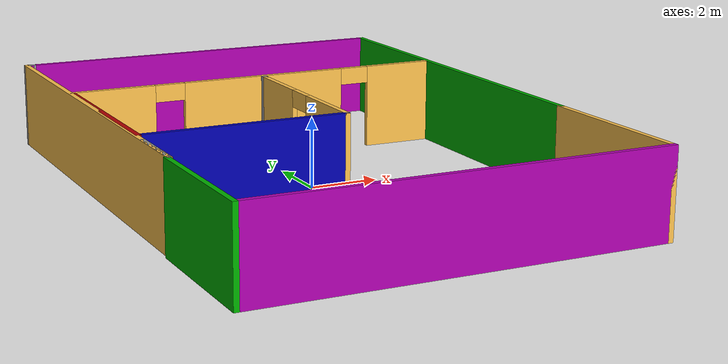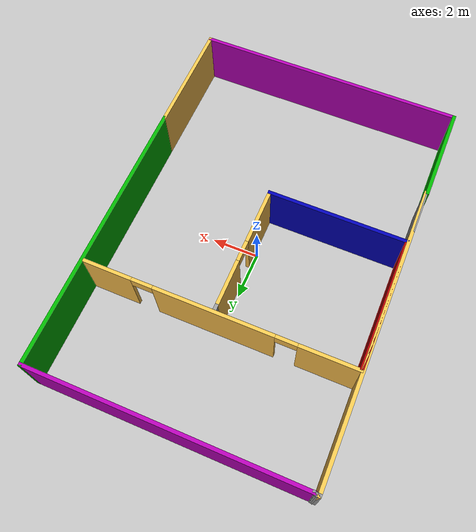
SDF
<?xml version='1.0'?>
<sdf version='1.6'>
  <model name='building4'>
    <link name='Wall_0'>
      <pose frame=''>-5.8 -6.32137 0 0 0 -1.5708</pose>
      <self_collide>0</self_collide>
      <kinematic>0</kinematic>
      <gravity>1</gravity>
      <inertial>
        <mass>1</mass>
        <pose frame=''>0 0 0 0 -0 0</pose>
        <inertia>
          <ixx>1</ixx>
          <ixy>0</ixy>
          <ixz>0</ixz>
          <iyy>1</iyy>
          <iyz>0</iyz>
          <izz>1</izz>
        </inertia>
      </inertial>
      <visual name='Wall_0_Visual'>
        <pose frame=''>0 0 1.25 0 -0 0</pose>
        <geometry>
          <box>
            <size>4.25 0.15 2.5</size>
          </box>
        </geometry>
        <material>
          <script>
            <uri>file://media/materials/scripts/gazebo.material</uri>
            <name>Gazebo/Grey</name>
          </script>
          <ambient>1 0.765 0.306 1</ambient>
          <shader type='pixel'>
            <normal_map>__default__</normal_map>
          </shader>
          <diffuse>0 0.7 0 1</diffuse>
          <specular>0.01 0.01 0.01 1</specular>
          <emissive>0 0 0 1</emissive>
        </material>
        <meta>
          <layer>0</layer>
        </meta>
        <transparency>0</transparency>
        <cast_shadows>1</cast_shadows>
      </visual>
      <collision name='Wall_0_Collision'>
        <laser_retro>0</laser_retro>
        <max_contacts>10</max_contacts>
        <pose frame=''>0 0 1.25 0 -0 0</pose>
        <geometry>
          <box>
            <size>4.25 0.15 2.5</size>
          </box>
        </geometry>
        <surface>
          <friction>
            <ode>
              <mu>1</mu>
              <mu2>1</mu2>
              <fdir1>0 0 0</fdir1>
              <slip1>0</slip1>
              <slip2>0</slip2>
            </ode>
            <torsional>
              <coefficient>1</coefficient>
              <patch_radius>0</patch_radius>
              <surface_radius>0</surface_radius>
              <use_patch_radius>1</use_patch_radius>
              <ode>
                <slip>0</slip>
              </ode>
            </torsional>
          </friction>
          <bounce>
            <restitution_coefficient>0</restitution_coefficient>
            <threshold>1e+06</threshold>
          </bounce>
          <contact>
            <collide_without_contact>0</collide_without_contact>
            <collide_without_contact_bitmask>1</collide_without_contact_bitmask>
            <collide_bitmask>1</collide_bitmask>
            <ode>
              <soft_cfm>0</soft_cfm>
              <soft_erp>0.2</soft_erp>
              <kp>1e+13</kp>
              <kd>1</kd>
              <max_vel>0.01</max_vel>
              <min_depth>0</min_depth>
            </ode>
            <bullet>
              <split_impulse>1</split_impulse>
              <split_impulse_penetration_threshold>-0.01</split_impulse_penetration_threshold>
              <soft_cfm>0</soft_cfm>
              <soft_erp>0.2</soft_erp>
              <kp>1e+13</kp>
              <kd>1</kd>
            </bullet>
          </contact>
        </surface>
      </collision>
    </link>
    <link name='Wall_1'>
      <pose frame=''>0 -8.37137 0 0 -0 0</pose>
      <self_collide>0</self_collide>
      <kinematic>0</kinematic>
      <gravity>1</gravity>
      <inertial>
        <mass>1</mass>
        <pose frame=''>0 0 0 0 -0 0</pose>
        <inertia>
          <ixx>1</ixx>
          <ixy>0</ixy>
          <ixz>0</ixz>
          <iyy>1</iyy>
          <iyz>0</iyz>
          <izz>1</izz>
        </inertia>
      </inertial>
      <visual name='Wall_1_Visual'>
        <pose frame=''>0 0 1.25 0 -0 0</pose>
        <geometry>
          <box>
            <size>11.75 0.15 2.5</size>
          </box>
        </geometry>
        <material>
          <script>
            <uri>file://media/materials/scripts/gazebo.material</uri>
            <name>Gazebo/Grey</name>
          </script>
          <ambient>1 0.765 0.306 1</ambient>
          <shader type='pixel'>
            <normal_map>__default__</normal_map>
          </shader>
          <diffuse>0.7 0 0.7 1</diffuse>
          <specular>0.01 0.01 0.01 1</specular>
          <emissive>0 0 0 1</emissive>
        </material>
        <meta>
          <layer>0</layer>
        </meta>
        <transparency>0</transparency>
        <cast_shadows>1</cast_shadows>
      </visual>
      <collision name='Wall_1_Collision'>
        <laser_retro>0</laser_retro>
        <max_contacts>10</max_contacts>
        <pose frame=''>0 0 1.25 0 -0 0</pose>
        <geometry>
          <box>
            <size>11.75 0.15 2.5</size>
          </box>
        </geometry>
        <surface>
          <friction>
            <ode>
              <mu>1</mu>
              <mu2>1</mu2>
              <fdir1>0 0 0</fdir1>
              <slip1>0</slip1>
              <slip2>0</slip2>
            </ode>
            <torsional>
              <coefficient>1</coefficient>
              <patch_radius>0</patch_radius>
              <surface_radius>0</surface_radius>
              <use_patch_radius>1</use_patch_radius>
              <ode>
                <slip>0</slip>
              </ode>
            </torsional>
          </friction>
          <bounce>
            <restitution_coefficient>0</restitution_coefficient>
            <threshold>1e+06</threshold>
          </bounce>
          <contact>
            <collide_without_contact>0</collide_without_contact>
            <collide_without_contact_bitmask>1</collide_without_contact_bitmask>
            <collide_bitmask>1</collide_bitmask>
            <ode>
              <soft_cfm>0</soft_cfm>
              <soft_erp>0.2</soft_erp>
              <kp>1e+13</kp>
              <kd>1</kd>
              <max_vel>0.01</max_vel>
              <min_depth>0</min_depth>
            </ode>
            <bullet>
              <split_impulse>1</split_impulse>
              <split_impulse_penetration_threshold>-0.01</split_impulse_penetration_threshold>
              <soft_cfm>0</soft_cfm>
              <soft_erp>0.2</soft_erp>
              <kp>1e+13</kp>
              <kd>1</kd>
            </bullet>
          </contact>
        </surface>
      </collision>
    </link>
    <link name='Wall_11'>
      <pose frame=''>-0.002798 3.79652 0 0 -0 3.14159</pose>
      <self_collide>0</self_collide>
      <kinematic>0</kinematic>
      <visual name='Wall_11_Visual_0'>
        <pose frame=''>-4.69672 0 1.25 0 -0 0</pose>
        <geometry>
          <box>
            <size>2.10657 0.15 2.5</size>
          </box>
        </geometry>
        <material>
          <script>
            <uri>file://media/materials/scripts/gazebo.material</uri>
            <name>Gazebo/Grey</name>
          </script>
          <ambient>1 0.764706 0.305882 1</ambient>
          <shader type='pixel'/>
          <diffuse>0.7 0.7 0.7 1</diffuse>
          <specular>0.01 0.01 0.01 1</specular>
          <emissive>0 0 0 1</emissive>
        </material>
        <meta>
          <layer>0</layer>
        </meta>
        <transparency>0</transparency>
        <cast_shadows>1</cast_shadows>
      </visual>
      <visual name='Wall_11_Visual_1'>
        <pose frame=''>-0.212516 0 1.25 0 -0 0</pose>
        <geometry>
          <box>
            <size>5.06183 0.15 2.5</size>
          </box>
        </geometry>
        <material>
          <script>
            <uri>file://media/materials/scripts/gazebo.material</uri>
            <name>Gazebo/Grey</name>
          </script>
          <ambient>1 0.764706 0.305882 1</ambient>
          <shader type='pixel'/>
          <diffuse>0.7 0.7 0.7 1</diffuse>
          <specular>0.01 0.01 0.01 1</specular>
          <emissive>0 0 0 1</emissive>
        </material>
        <meta>
          <layer>0</layer>
        </meta>
        <transparency>0</transparency>
        <cast_shadows>1</cast_shadows>
      </visual>
      <visual name='Wall_11_Visual_2'>
        <pose frame=''>4.4842 0 1.25 0 -0 0</pose>
        <geometry>
          <box>
            <size>2.5316 0.15 2.5</size>
          </box>
        </geometry>
        <material>
          <script>
            <uri>file://media/materials/scripts/gazebo.material</uri>
            <name>Gazebo/Grey</name>
          </script>
          <ambient>1 0.764706 0.305882 1</ambient>
          <shader type='pixel'/>
          <diffuse>0.7 0.7 0.7 1</diffuse>
          <specular>0.01 0.01 0.01 1</specular>
          <emissive>0 0 0 1</emissive>
        </material>
        <meta>
          <layer>0</layer>
        </meta>
        <transparency>0</transparency>
        <cast_shadows>1</cast_shadows>
      </visual>
      <visual name='Wall_11_Visual_3'>
        <pose frame=''>-3.19343 0 2.25 0 -0 0</pose>
        <geometry>
          <box>
            <size>0.9 0.15 0.5</size>
          </box>
        </geometry>
        <material>
          <script>
            <uri>file://media/materials/scripts/gazebo.material</uri>
            <name>Gazebo/Grey</name>
          </script>
          <ambient>1 0.764706 0.305882 1</ambient>
          <shader type='pixel'/>
          <diffuse>0.7 0.7 0.7 1</diffuse>
          <specular>0.01 0.01 0.01 1</specular>
          <emissive>0 0 0 1</emissive>
        </material>
        <meta>
          <layer>0</layer>
        </meta>
        <transparency>0</transparency>
        <cast_shadows>1</cast_shadows>
      </visual>
      <visual name='Wall_11_Visual_4'>
        <pose frame=''>2.7684 0 2.25 0 -0 0</pose>
        <geometry>
          <box>
            <size>0.9 0.15 0.5</size>
          </box>
        </geometry>
        <material>
          <script>
            <uri>file://media/materials/scripts/gazebo.material</uri>
            <name>Gazebo/Grey</name>
          </script>
          <ambient>1 0.764706 0.305882 1</ambient>
          <shader type='pixel'/>
          <diffuse>0.7 0.7 0.7 1</diffuse>
          <specular>0.01 0.01 0.01 1</specular>
          <emissive>0 0 0 1</emissive>
        </material>
        <meta>
          <layer>0</layer>
        </meta>
        <transparency>0</transparency>
        <cast_shadows>1</cast_shadows>
      </visual>
      <collision name='Wall_11_Collision_0'>
        <laser_retro>0</laser_retro>
        <max_contacts>10</max_contacts>
        <pose frame=''>-4.69672 0 1.25 0 -0 0</pose>
        <geometry>
          <box>
            <size>2.10657 0.15 2.5</size>
          </box>
        </geometry>
        <surface>
          <friction>
            <ode>
              <mu>1</mu>
              <mu2>1</mu2>
              <fdir1>0 0 0</fdir1>
              <slip1>0</slip1>
              <slip2>0</slip2>
            </ode>
            <torsional>
              <coefficient>1</coefficient>
              <patch_radius>0</patch_radius>
              <surface_radius>0</surface_radius>
              <use_patch_radius>1</use_patch_radius>
              <ode>
                <slip>0</slip>
              </ode>
            </torsional>
          </friction>
          <bounce>
            <restitution_coefficient>0</restitution_coefficient>
            <threshold>1e+06</threshold>
          </bounce>
          <contact>
            <collide_without_contact>0</collide_without_contact>
            <collide_without_contact_bitmask>1</collide_without_contact_bitmask>
            <collide_bitmask>1</collide_bitmask>
            <ode>
              <soft_cfm>0</soft_cfm>
              <soft_erp>0.2</soft_erp>
              <kp>1e+13</kp>
              <kd>1</kd>
              <max_vel>0.01</max_vel>
              <min_depth>0</min_depth>
            </ode>
            <bullet>
              <split_impulse>1</split_impulse>
              <split_impulse_penetration_threshold>-0.01</split_impulse_penetration_threshold>
              <soft_cfm>0</soft_cfm>
              <soft_erp>0.2</soft_erp>
              <kp>1e+13</kp>
              <kd>1</kd>
            </bullet>
          </contact>
        </surface>
      </collision>
      <collision name='Wall_11_Collision_3'>
        <laser_retro>0</laser_retro>
        <max_contacts>10</max_contacts>
        <pose frame=''>-3.19343 0 2.25 0 -0 0</pose>
        <geometry>
          <box>
            <size>0.9 0.15 0.5</size>
          </box>
        </geometry>
        <surface>
          <friction>
            <ode>
              <mu>1</mu>
              <mu2>1</mu2>
              <fdir1>0 0 0</fdir1>
              <slip1>0</slip1>
              <slip2>0</slip2>
            </ode>
            <torsional>
              <coefficient>1</coefficient>
              <patch_radius>0</patch_radius>
              <surface_radius>0</surface_radius>
              <use_patch_radius>1</use_patch_radius>
              <ode>
                <slip>0</slip>
              </ode>
            </torsional>
          </friction>
          <bounce>
            <restitution_coefficient>0</restitution_coefficient>
            <threshold>1e+06</threshold>
          </bounce>
          <contact>
            <collide_without_contact>0</collide_without_contact>
            <collide_without_contact_bitmask>1</collide_without_contact_bitmask>
            <collide_bitmask>1</collide_bitmask>
            <ode>
              <soft_cfm>0</soft_cfm>
              <soft_erp>0.2</soft_erp>
              <kp>1e+13</kp>
              <kd>1</kd>
              <max_vel>0.01</max_vel>
              <min_depth>0</min_depth>
            </ode>
            <bullet>
              <split_impulse>1</split_impulse>
              <split_impulse_penetration_threshold>-0.01</split_impulse_penetration_threshold>
              <soft_cfm>0</soft_cfm>
              <soft_erp>0.2</soft_erp>
              <kp>1e+13</kp>
              <kd>1</kd>
            </bullet>
          </contact>
        </surface>
      </collision>
      <collision name='Wall_11_Collision_1'>
        <laser_retro>0</laser_retro>
        <max_contacts>10</max_contacts>
        <pose frame=''>-0.212516 0 1.25 0 -0 0</pose>
        <geometry>
          <box>
            <size>5.06183 0.15 2.5</size>
          </box>
        </geometry>
        <surface>
          <friction>
            <ode>
              <mu>1</mu>
              <mu2>1</mu2>
              <fdir1>0 0 0</fdir1>
              <slip1>0</slip1>
              <slip2>0</slip2>
            </ode>
            <torsional>
              <coefficient>1</coefficient>
              <patch_radius>0</patch_radius>
              <surface_radius>0</surface_radius>
              <use_patch_radius>1</use_patch_radius>
              <ode>
                <slip>0</slip>
              </ode>
            </torsional>
          </friction>
          <bounce>
            <restitution_coefficient>0</restitution_coefficient>
            <threshold>1e+06</threshold>
          </bounce>
          <contact>
            <collide_without_contact>0</collide_without_contact>
            <collide_without_contact_bitmask>1</collide_without_contact_bitmask>
            <collide_bitmask>1</collide_bitmask>
            <ode>
              <soft_cfm>0</soft_cfm>
              <soft_erp>0.2</soft_erp>
              <kp>1e+13</kp>
              <kd>1</kd>
              <max_vel>0.01</max_vel>
              <min_depth>0</min_depth>
            </ode>
            <bullet>
              <split_impulse>1</split_impulse>
              <split_impulse_penetration_threshold>-0.01</split_impulse_penetration_threshold>
              <soft_cfm>0</soft_cfm>
              <soft_erp>0.2</soft_erp>
              <kp>1e+13</kp>
              <kd>1</kd>
            </bullet>
          </contact>
        </surface>
      </collision>
      <collision name='Wall_11_Collision_2'>
        <laser_retro>0</laser_retro>
        <max_contacts>10</max_contacts>
        <pose frame=''>4.4842 0 1.25 0 -0 0</pose>
        <geometry>
          <box>
            <size>2.5316 0.15 2.5</size>
          </box>
        </geometry>
        <surface>
          <friction>
            <ode>
              <mu>1</mu>
              <mu2>1</mu2>
              <fdir1>0 0 0</fdir1>
              <slip1>0</slip1>
              <slip2>0</slip2>
            </ode>
            <torsional>
              <coefficient>1</coefficient>
              <patch_radius>0</patch_radius>
              <surface_radius>0</surface_radius>
              <use_patch_radius>1</use_patch_radius>
              <ode>
                <slip>0</slip>
              </ode>
            </torsional>
          </friction>
          <bounce>
            <restitution_coefficient>0</restitution_coefficient>
            <threshold>1e+06</threshold>
          </bounce>
          <contact>
            <collide_without_contact>0</collide_without_contact>
            <collide_without_contact_bitmask>1</collide_without_contact_bitmask>
            <collide_bitmask>1</collide_bitmask>
            <ode>
              <soft_cfm>0</soft_cfm>
              <soft_erp>0.2</soft_erp>
              <kp>1e+13</kp>
              <kd>1</kd>
              <max_vel>0.01</max_vel>
              <min_depth>0</min_depth>
            </ode>
            <bullet>
              <split_impulse>1</split_impulse>
              <split_impulse_penetration_threshold>-0.01</split_impulse_penetration_threshold>
              <soft_cfm>0</soft_cfm>
              <soft_erp>0.2</soft_erp>
              <kp>1e+13</kp>
              <kd>1</kd>
            </bullet>
          </contact>
        </surface>
      </collision>
      <collision name='Wall_11_Collision_4'>
        <laser_retro>0</laser_retro>
        <max_contacts>10</max_contacts>
        <pose frame=''>2.7684 0 2.25 0 -0 0</pose>
        <geometry>
          <box>
            <size>0.9 0.15 0.5</size>
          </box>
        </geometry>
        <surface>
          <friction>
            <ode>
              <mu>1</mu>
              <mu2>1</mu2>
              <fdir1>0 0 0</fdir1>
              <slip1>0</slip1>
              <slip2>0</slip2>
            </ode>
            <torsional>
              <coefficient>1</coefficient>
              <patch_radius>0</patch_radius>
              <surface_radius>0</surface_radius>
              <use_patch_radius>1</use_patch_radius>
              <ode>
                <slip>0</slip>
              </ode>
            </torsional>
          </friction>
          <bounce>
            <restitution_coefficient>0</restitution_coefficient>
            <threshold>1e+06</threshold>
          </bounce>
          <contact>
            <collide_without_contact>0</collide_without_contact>
            <collide_without_contact_bitmask>1</collide_without_contact_bitmask>
            <collide_bitmask>1</collide_bitmask>
            <ode>
              <soft_cfm>0</soft_cfm>
              <soft_erp>0.2</soft_erp>
              <kp>1e+13</kp>
              <kd>1</kd>
              <max_vel>0.01</max_vel>
              <min_depth>0</min_depth>
            </ode>
            <bullet>
              <split_impulse>1</split_impulse>
              <split_impulse_penetration_threshold>-0.01</split_impulse_penetration_threshold>
              <soft_cfm>0</soft_cfm>
              <soft_erp>0.2</soft_erp>
              <kp>1e+13</kp>
              <kd>1</kd>
            </bullet>
          </contact>
        </surface>
      </collision>
    </link>
    <link name='Wall_12'>
      <pose frame=''>-5.6778 0.996518 0 0 0 -1.5708</pose>
      <self_collide>0</self_collide>
      <kinematic>0</kinematic>
      <gravity>1</gravity>
      <inertial>
        <mass>1</mass>
        <pose frame=''>0 0 0 0 -0 0</pose>
        <inertia>
          <ixx>1</ixx>
          <ixy>0</ixy>
          <ixz>0</ixz>
          <iyy>1</iyy>
          <iyz>0</iyz>
          <izz>1</izz>
        </inertia>
      </inertial>
      <visual name='Wall_12_Visual'>
        <pose frame=''>0 0 1.25 0 -0 0</pose>
        <geometry>
          <box>
            <size>5.75 0.15 2.5</size>
          </box>
        </geometry>
        <material>
          <script>
            <uri>file://media/materials/scripts/gazebo.material</uri>
            <name>Gazebo/Grey</name>
          </script>
          <ambient>1 0.765 0.306 1</ambient>
          <shader type='pixel'>
            <normal_map>__default__</normal_map>
          </shader>
          <diffuse>0.7 0 0 1</diffuse>
          <specular>0.01 0.01 0.01 1</specular>
          <emissive>0 0 0 1</emissive>
        </material>
        <meta>
          <layer>0</layer>
        </meta>
        <transparency>0</transparency>
        <cast_shadows>1</cast_shadows>
      </visual>
      <collision name='Wall_12_Collision'>
        <laser_retro>0</laser_retro>
        <max_contacts>10</max_contacts>
        <pose frame=''>0 0 1.25 0 -0 0</pose>
        <geometry>
          <box>
            <size>5.75 0.15 2.5</size>
          </box>
        </geometry>
        <surface>
          <friction>
            <ode>
              <mu>1</mu>
              <mu2>1</mu2>
              <fdir1>0 0 0</fdir1>
              <slip1>0</slip1>
              <slip2>0</slip2>
            </ode>
            <torsional>
              <coefficient>1</coefficient>
              <patch_radius>0</patch_radius>
              <surface_radius>0</surface_radius>
              <use_patch_radius>1</use_patch_radius>
              <ode>
                <slip>0</slip>
              </ode>
            </torsional>
          </friction>
          <bounce>
            <restitution_coefficient>0</restitution_coefficient>
            <threshold>1e+06</threshold>
          </bounce>
          <contact>
            <collide_without_contact>0</collide_without_contact>
            <collide_without_contact_bitmask>1</collide_without_contact_bitmask>
            <collide_bitmask>1</collide_bitmask>
            <ode>
              <soft_cfm>0</soft_cfm>
              <soft_erp>0.2</soft_erp>
              <kp>1e+13</kp>
              <kd>1</kd>
              <max_vel>0.01</max_vel>
              <min_depth>0</min_depth>
            </ode>
            <bullet>
              <split_impulse>1</split_impulse>
              <split_impulse_penetration_threshold>-0.01</split_impulse_penetration_threshold>
              <soft_cfm>0</soft_cfm>
              <soft_erp>0.2</soft_erp>
              <kp>1e+13</kp>
              <kd>1</kd>
            </bullet>
          </contact>
        </surface>
      </collision>
    </link>
    <link name='Wall_13'>
      <pose frame=''>-2.7528 -1.80348 0 0 -0 0</pose>
      <self_collide>0</self_collide>
      <kinematic>0</kinematic>
      <gravity>1</gravity>
      <inertial>
        <mass>1</mass>
        <pose frame=''>0 0 0 0 -0 0</pose>
        <inertia>
          <ixx>1</ixx>
          <ixy>0</ixy>
          <ixz>0</ixz>
          <iyy>1</iyy>
          <iyz>0</iyz>
          <izz>1</izz>
        </inertia>
      </inertial>
      <visual name='Wall_13_Visual'>
        <pose frame=''>0 0 1.25 0 -0 0</pose>
        <geometry>
          <box>
            <size>6 0.15 2.5</size>
          </box>
        </geometry>
        <material>
          <script>
            <uri>file://media/materials/scripts/gazebo.material</uri>
            <name>Gazebo/Grey</name>
          </script>
          <ambient>1 0.765 0.306 1</ambient>
          <shader type='pixel'>
            <normal_map>__default__</normal_map>
          </shader>
          <diffuse>0 0 0.7 1</diffuse>
          <specular>0.01 0.01 0.01 1</specular>
          <emissive>0 0 0 1</emissive>
        </material>
        <meta>
          <layer>0</layer>
        </meta>
        <transparency>0</transparency>
        <cast_shadows>1</cast_shadows>
      </visual>
      <collision name='Wall_13_Collision'>
        <laser_retro>0</laser_retro>
        <max_contacts>10</max_contacts>
        <pose frame=''>0 0 1.25 0 -0 0</pose>
        <geometry>
          <box>
            <size>6 0.15 2.5</size>
          </box>
        </geometry>
        <surface>
          <friction>
            <ode>
              <mu>1</mu>
              <mu2>1</mu2>
              <fdir1>0 0 0</fdir1>
              <slip1>0</slip1>
              <slip2>0</slip2>
            </ode>
            <torsional>
              <coefficient>1</coefficient>
              <patch_radius>0</patch_radius>
              <surface_radius>0</surface_radius>
              <use_patch_radius>1</use_patch_radius>
              <ode>
                <slip>0</slip>
              </ode>
            </torsional>
          </friction>
          <bounce>
            <restitution_coefficient>0</restitution_coefficient>
            <threshold>1e+06</threshold>
          </bounce>
          <contact>
            <collide_without_contact>0</collide_without_contact>
            <collide_without_contact_bitmask>1</collide_without_contact_bitmask>
            <collide_bitmask>1</collide_bitmask>
            <ode>
              <soft_cfm>0</soft_cfm>
              <soft_erp>0.2</soft_erp>
              <kp>1e+13</kp>
              <kd>1</kd>
              <max_vel>0.01</max_vel>
              <min_depth>0</min_depth>
            </ode>
            <bullet>
              <split_impulse>1</split_impulse>
              <split_impulse_penetration_threshold>-0.01</split_impulse_penetration_threshold>
              <soft_cfm>0</soft_cfm>
              <soft_erp>0.2</soft_erp>
              <kp>1e+13</kp>
              <kd>1</kd>
            </bullet>
          </contact>
        </surface>
      </collision>
    </link>
    <link name='Wall_14'>
      <pose frame=''>0.172202 0.871518 0 0 -0 1.5708</pose>
      <self_collide>0</self_collide>
      <kinematic>0</kinematic>
      <visual name='Wall_14_Visual_0'>
        <pose frame=''>-1.50462 0 1.25 0 -0 0</pose>
        <geometry>
          <box>
            <size>2.49076 0.15 2.5</size>
          </box>
        </geometry>
        <material>
          <script>
            <uri>file://media/materials/scripts/gazebo.material</uri>
            <name>Gazebo/Grey</name>
          </script>
          <ambient>1 0.764706 0.305882 1</ambient>
          <shader type='pixel'/>
          <diffuse>0.7 0.7 0.7 1</diffuse>
          <specular>0.01 0.01 0.01 1</specular>
          <emissive>0 0 0 1</emissive>
        </material>
        <meta>
          <layer>0</layer>
        </meta>
        <transparency>0</transparency>
        <cast_shadows>1</cast_shadows>
      </visual>
      <visual name='Wall_14_Visual_1'>
        <pose frame=''>1.69538 0 1.25 0 -0 0</pose>
        <geometry>
          <box>
            <size>2.10924 0.15 2.5</size>
          </box>
        </geometry>
        <material>
          <script>
            <uri>file://media/materials/scripts/gazebo.material</uri>
            <name>Gazebo/Grey</name>
          </script>
          <ambient>1 0.764706 0.305882 1</ambient>
          <shader type='pixel'/>
          <diffuse>0.7 0.7 0.7 1</diffuse>
          <specular>0.01 0.01 0.01 1</specular>
          <emissive>0 0 0 1</emissive>
        </material>
        <meta>
          <layer>0</layer>
        </meta>
        <transparency>0</transparency>
        <cast_shadows>1</cast_shadows>
      </visual>
      <visual name='Wall_14_Visual_2'>
        <pose frame=''>0.190763 0 2.25 0 -0 0</pose>
        <geometry>
          <box>
            <size>0.9 0.15 0.5</size>
          </box>
        </geometry>
        <material>
          <script>
            <uri>file://media/materials/scripts/gazebo.material</uri>
            <name>Gazebo/Grey</name>
          </script>
          <ambient>1 0.764706 0.305882 1</ambient>
          <shader type='pixel'/>
          <diffuse>0.7 0.7 0.7 1</diffuse>
          <specular>0.01 0.01 0.01 1</specular>
          <emissive>0 0 0 1</emissive>
        </material>
        <meta>
          <layer>0</layer>
        </meta>
        <transparency>0</transparency>
        <cast_shadows>1</cast_shadows>
      </visual>
      <collision name='Wall_14_Collision_0'>
        <laser_retro>0</laser_retro>
        <max_contacts>10</max_contacts>
        <pose frame=''>-1.50462 0 1.25 0 -0 0</pose>
        <geometry>
          <box>
            <size>2.49076 0.15 2.5</size>
          </box>
        </geometry>
        <surface>
          <friction>
            <ode>
              <mu>1</mu>
              <mu2>1</mu2>
              <fdir1>0 0 0</fdir1>
              <slip1>0</slip1>
              <slip2>0</slip2>
            </ode>
            <torsional>
              <coefficient>1</coefficient>
              <patch_radius>0</patch_radius>
              <surface_radius>0</surface_radius>
              <use_patch_radius>1</use_patch_radius>
              <ode>
                <slip>0</slip>
              </ode>
            </torsional>
          </friction>
          <bounce>
            <restitution_coefficient>0</restitution_coefficient>
            <threshold>1e+06</threshold>
          </bounce>
          <contact>
            <collide_without_contact>0</collide_without_contact>
            <collide_without_contact_bitmask>1</collide_without_contact_bitmask>
            <collide_bitmask>1</collide_bitmask>
            <ode>
              <soft_cfm>0</soft_cfm>
              <soft_erp>0.2</soft_erp>
              <kp>1e+13</kp>
              <kd>1</kd>
              <max_vel>0.01</max_vel>
              <min_depth>0</min_depth>
            </ode>
            <bullet>
              <split_impulse>1</split_impulse>
              <split_impulse_penetration_threshold>-0.01</split_impulse_penetration_threshold>
              <soft_cfm>0</soft_cfm>
              <soft_erp>0.2</soft_erp>
              <kp>1e+13</kp>
              <kd>1</kd>
            </bullet>
          </contact>
        </surface>
      </collision>
      <collision name='Wall_14_Collision_1'>
        <laser_retro>0</laser_retro>
        <max_contacts>10</max_contacts>
        <pose frame=''>1.69538 0 1.25 0 -0 0</pose>
        <geometry>
          <box>
            <size>2.10924 0.15 2.5</size>
          </box>
        </geometry>
        <surface>
          <friction>
            <ode>
              <mu>1</mu>
              <mu2>1</mu2>
              <fdir1>0 0 0</fdir1>
              <slip1>0</slip1>
              <slip2>0</slip2>
            </ode>
            <torsional>
              <coefficient>1</coefficient>
              <patch_radius>0</patch_radius>
              <surface_radius>0</surface_radius>
              <use_patch_radius>1</use_patch_radius>
              <ode>
                <slip>0</slip>
              </ode>
            </torsional>
          </friction>
          <bounce>
            <restitution_coefficient>0</restitution_coefficient>
            <threshold>1e+06</threshold>
          </bounce>
          <contact>
            <collide_without_contact>0</collide_without_contact>
            <collide_without_contact_bitmask>1</collide_without_contact_bitmask>
            <collide_bitmask>1</collide_bitmask>
            <ode>
              <soft_cfm>0</soft_cfm>
              <soft_erp>0.2</soft_erp>
              <kp>1e+13</kp>
              <kd>1</kd>
              <max_vel>0.01</max_vel>
              <min_depth>0</min_depth>
            </ode>
            <bullet>
              <split_impulse>1</split_impulse>
              <split_impulse_penetration_threshold>-0.01</split_impulse_penetration_threshold>
              <soft_cfm>0</soft_cfm>
              <soft_erp>0.2</soft_erp>
              <kp>1e+13</kp>
              <kd>1</kd>
            </bullet>
          </contact>
        </surface>
      </collision>
      <collision name='Wall_14_Collision_2'>
        <laser_retro>0</laser_retro>
        <max_contacts>10</max_contacts>
        <pose frame=''>0.190763 0 2.25 0 -0 0</pose>
        <geometry>
          <box>
            <size>0.9 0.15 0.5</size>
          </box>
        </geometry>
        <surface>
          <friction>
            <ode>
              <mu>1</mu>
              <mu2>1</mu2>
              <fdir1>0 0 0</fdir1>
              <slip1>0</slip1>
              <slip2>0</slip2>
            </ode>
            <torsional>
              <coefficient>1</coefficient>
              <patch_radius>0</patch_radius>
              <surface_radius>0</surface_radius>
              <use_patch_radius>1</use_patch_radius>
              <ode>
                <slip>0</slip>
              </ode>
            </torsional>
          </friction>
          <bounce>
            <restitution_coefficient>0</restitution_coefficient>
            <threshold>1e+06</threshold>
          </bounce>
          <contact>
            <collide_without_contact>0</collide_without_contact>
            <collide_without_contact_bitmask>1</collide_without_contact_bitmask>
            <collide_bitmask>1</collide_bitmask>
            <ode>
              <soft_cfm>0</soft_cfm>
              <soft_erp>0.2</soft_erp>
              <kp>1e+13</kp>
              <kd>1</kd>
              <max_vel>0.01</max_vel>
              <min_depth>0</min_depth>
            </ode>
            <bullet>
              <split_impulse>1</split_impulse>
              <split_impulse_penetration_threshold>-0.01</split_impulse_penetration_threshold>
              <soft_cfm>0</soft_cfm>
              <soft_erp>0.2</soft_erp>
              <kp>1e+13</kp>
              <kd>1</kd>
            </bullet>
          </contact>
        </surface>
      </collision>
    </link>
    <link name='Wall_15'>
      <pose frame=''>0.172101 3.59658 0 0 -0 1.57281</pose>
      <self_collide>0</self_collide>
      <kinematic>0</kinematic>
      <visual name='Wall_15_Visual'>
        <pose frame=''>0 0 1.25 0 -0 0</pose>
        <geometry>
          <box>
            <size>0.25 0.15 2.5</size>
          </box>
        </geometry>
        <material>
          <script>
            <uri>file://media/materials/scripts/gazebo.material</uri>
            <name>Gazebo/Grey</name>
          </script>
          <ambient>1 1 1 1</ambient>
          <shader type='pixel'/>
          <diffuse>0.7 0.7 0.7 1</diffuse>
          <specular>0.01 0.01 0.01 1</specular>
          <emissive>0 0 0 1</emissive>
        </material>
        <meta>
          <layer>0</layer>
        </meta>
        <transparency>0</transparency>
        <cast_shadows>1</cast_shadows>
      </visual>
      <collision name='Wall_15_Collision'>
        <laser_retro>0</laser_retro>
        <max_contacts>10</max_contacts>
        <pose frame=''>0 0 1.25 0 -0 0</pose>
        <geometry>
          <box>
            <size>0.25 0.15 2.5</size>
          </box>
        </geometry>
        <surface>
          <friction>
            <ode>
              <mu>1</mu>
              <mu2>1</mu2>
              <fdir1>0 0 0</fdir1>
              <slip1>0</slip1>
              <slip2>0</slip2>
            </ode>
            <torsional>
              <coefficient>1</coefficient>
              <patch_radius>0</patch_radius>
              <surface_radius>0</surface_radius>
              <use_patch_radius>1</use_patch_radius>
              <ode>
                <slip>0</slip>
              </ode>
            </torsional>
          </friction>
          <bounce>
            <restitution_coefficient>0</restitution_coefficient>
            <threshold>1e+06</threshold>
          </bounce>
          <contact>
            <collide_without_contact>0</collide_without_contact>
            <collide_without_contact_bitmask>1</collide_without_contact_bitmask>
            <collide_bitmask>1</collide_bitmask>
            <ode>
              <soft_cfm>0</soft_cfm>
              <soft_erp>0.2</soft_erp>
              <kp>1e+13</kp>
              <kd>1</kd>
              <max_vel>0.01</max_vel>
              <min_depth>0</min_depth>
            </ode>
            <bullet>
              <split_impulse>1</split_impulse>
              <split_impulse_penetration_threshold>-0.01</split_impulse_penetration_threshold>
              <soft_cfm>0</soft_cfm>
              <soft_erp>0.2</soft_erp>
              <kp>1e+13</kp>
              <kd>1</kd>
            </bullet>
          </contact>
        </surface>
      </collision>
    </link>
    <link name='Wall_2'>
      <pose frame=''>5.8 -5.94637 0 0 -0 1.5708</pose>
      <self_collide>0</self_collide>
      <kinematic>0</kinematic>
      <visual name='Wall_2_Visual'>
        <pose frame=''>0 0 1.25 0 -0 0</pose>
        <geometry>
          <box>
            <size>5 0.15 2.5</size>
          </box>
        </geometry>
        <material>
          <script>
            <uri>file://media/materials/scripts/gazebo.material</uri>
            <name>Gazebo/Grey</name>
          </script>
          <ambient>1 0.764706 0.305882 1</ambient>
          <shader type='pixel'/>
          <diffuse>0.7 0.7 0.7 1</diffuse>
          <specular>0.01 0.01 0.01 1</specular>
          <emissive>0 0 0 1</emissive>
        </material>
        <meta>
          <layer>0</layer>
        </meta>
        <transparency>0</transparency>
        <cast_shadows>1</cast_shadows>
      </visual>
      <collision name='Wall_2_Collision'>
        <laser_retro>0</laser_retro>
        <max_contacts>10</max_contacts>
        <pose frame=''>0 0 1.25 0 -0 0</pose>
        <geometry>
          <box>
            <size>5 0.15 2.5</size>
          </box>
        </geometry>
        <surface>
          <friction>
            <ode>
              <mu>1</mu>
              <mu2>1</mu2>
              <fdir1>0 0 0</fdir1>
              <slip1>0</slip1>
              <slip2>0</slip2>
            </ode>
            <torsional>
              <coefficient>1</coefficient>
              <patch_radius>0</patch_radius>
              <surface_radius>0</surface_radius>
              <use_patch_radius>1</use_patch_radius>
              <ode>
                <slip>0</slip>
              </ode>
            </torsional>
          </friction>
          <bounce>
            <restitution_coefficient>0</restitution_coefficient>
            <threshold>1e+06</threshold>
          </bounce>
          <contact>
            <collide_without_contact>0</collide_without_contact>
            <collide_without_contact_bitmask>1</collide_without_contact_bitmask>
            <collide_bitmask>1</collide_bitmask>
            <ode>
              <soft_cfm>0</soft_cfm>
              <soft_erp>0.2</soft_erp>
              <kp>1e+13</kp>
              <kd>1</kd>
              <max_vel>0.01</max_vel>
              <min_depth>0</min_depth>
            </ode>
            <bullet>
              <split_impulse>1</split_impulse>
              <split_impulse_penetration_threshold>-0.01</split_impulse_penetration_threshold>
              <soft_cfm>0</soft_cfm>
              <soft_erp>0.2</soft_erp>
              <kp>1e+13</kp>
              <kd>1</kd>
            </bullet>
          </contact>
        </surface>
      </collision>
    </link>
    <link name='Wall_3'>
      <pose frame=''>5.8 2.40363 0 0 -0 1.5708</pose>
      <self_collide>0</self_collide>
      <kinematic>0</kinematic>
      <gravity>1</gravity>
      <inertial>
        <mass>1</mass>
        <pose frame=''>0 0 0 0 -0 0</pose>
        <inertia>
          <ixx>1</ixx>
          <ixy>0</ixy>
          <ixz>0</ixz>
          <iyy>1</iyy>
          <iyz>0</iyz>
          <izz>1</izz>
        </inertia>
      </inertial>
      <visual name='Wall_3_Visual'>
        <pose frame=''>0 0 1.25 0 -0 0</pose>
        <geometry>
          <box>
            <size>12 0.15 2.5</size>
          </box>
        </geometry>
        <material>
          <script>
            <uri>file://media/materials/scripts/gazebo.material</uri>
            <name>Gazebo/Grey</name>
          </script>
          <ambient>1 0.765 0.306 1</ambient>
          <shader type='pixel'>
            <normal_map>__default__</normal_map>
          </shader>
          <diffuse>0 0.7 0 1</diffuse>
          <specular>0.01 0.01 0.01 1</specular>
          <emissive>0 0 0 1</emissive>
        </material>
        <meta>
          <layer>0</layer>
        </meta>
        <transparency>0</transparency>
        <cast_shadows>1</cast_shadows>
      </visual>
      <collision name='Wall_3_Collision'>
        <laser_retro>0</laser_retro>
        <max_contacts>10</max_contacts>
        <pose frame=''>0 0 1.25 0 -0 0</pose>
        <geometry>
          <box>
            <size>12 0.15 2.5</size>
          </box>
        </geometry>
        <surface>
          <friction>
            <ode>
              <mu>1</mu>
              <mu2>1</mu2>
              <fdir1>0 0 0</fdir1>
              <slip1>0</slip1>
              <slip2>0</slip2>
            </ode>
            <torsional>
              <coefficient>1</coefficient>
              <patch_radius>0</patch_radius>
              <surface_radius>0</surface_radius>
              <use_patch_radius>1</use_patch_radius>
              <ode>
                <slip>0</slip>
              </ode>
            </torsional>
          </friction>
          <bounce>
            <restitution_coefficient>0</restitution_coefficient>
            <threshold>1e+06</threshold>
          </bounce>
          <contact>
            <collide_without_contact>0</collide_without_contact>
            <collide_without_contact_bitmask>1</collide_without_contact_bitmask>
            <collide_bitmask>1</collide_bitmask>
            <ode>
              <soft_cfm>0</soft_cfm>
              <soft_erp>0.2</soft_erp>
              <kp>1e+13</kp>
              <kd>1</kd>
              <max_vel>0.01</max_vel>
              <min_depth>0</min_depth>
            </ode>
            <bullet>
              <split_impulse>1</split_impulse>
              <split_impulse_penetration_threshold>-0.01</split_impulse_penetration_threshold>
              <soft_cfm>0</soft_cfm>
              <soft_erp>0.2</soft_erp>
              <kp>1e+13</kp>
              <kd>1</kd>
            </bullet>
          </contact>
        </surface>
      </collision>
    </link>
    <link name='Wall_4'>
      <pose frame=''>0.125 8.32863 0 0 -0 3.14159</pose>
      <self_collide>0</self_collide>
      <kinematic>0</kinematic>
      <gravity>1</gravity>
      <inertial>
        <mass>1</mass>
        <pose frame=''>0 0 0 0 -0 0</pose>
        <inertia>
          <ixx>1</ixx>
          <ixy>0</ixy>
          <ixz>0</ixz>
          <iyy>1</iyy>
          <iyz>0</iyz>
          <izz>1</izz>
        </inertia>
      </inertial>
      <visual name='Wall_4_Visual'>
        <pose frame=''>0 0 1.25 0 -0 0</pose>
        <geometry>
          <box>
            <size>11.5 0.15 2.5</size>
          </box>
        </geometry>
        <material>
          <script>
            <uri>file://media/materials/scripts/gazebo.material</uri>
            <name>Gazebo/Grey</name>
          </script>
          <ambient>1 0.765 0.306 1</ambient>
          <shader type='pixel'>
            <normal_map>__default__</normal_map>
          </shader>
          <diffuse>0.7 0 0.7 1</diffuse>
          <specular>0.01 0.01 0.01 1</specular>
          <emissive>0 0 0 1</emissive>
        </material>
        <meta>
          <layer>0</layer>
        </meta>
        <transparency>0</transparency>
        <cast_shadows>1</cast_shadows>
      </visual>
      <collision name='Wall_4_Collision'>
        <laser_retro>0</laser_retro>
        <max_contacts>10</max_contacts>
        <pose frame=''>0 0 1.25 0 -0 0</pose>
        <geometry>
          <box>
            <size>11.5 0.15 2.5</size>
          </box>
        </geometry>
        <surface>
          <friction>
            <ode>
              <mu>1</mu>
              <mu2>1</mu2>
              <fdir1>0 0 0</fdir1>
              <slip1>0</slip1>
              <slip2>0</slip2>
            </ode>
            <torsional>
              <coefficient>1</coefficient>
              <patch_radius>0</patch_radius>
              <surface_radius>0</surface_radius>
              <use_patch_radius>1</use_patch_radius>
              <ode>
                <slip>0</slip>
              </ode>
            </torsional>
          </friction>
          <bounce>
            <restitution_coefficient>0</restitution_coefficient>
            <threshold>1e+06</threshold>
          </bounce>
          <contact>
            <collide_without_contact>0</collide_without_contact>
            <collide_without_contact_bitmask>1</collide_without_contact_bitmask>
            <collide_bitmask>1</collide_bitmask>
            <ode>
              <soft_cfm>0</soft_cfm>
              <soft_erp>0.2</soft_erp>
              <kp>1e+13</kp>
              <kd>1</kd>
              <max_vel>0.01</max_vel>
              <min_depth>0</min_depth>
            </ode>
            <bullet>
              <split_impulse>1</split_impulse>
              <split_impulse_penetration_threshold>-0.01</split_impulse_penetration_threshold>
              <soft_cfm>0</soft_cfm>
              <soft_erp>0.2</soft_erp>
              <kp>1e+13</kp>
              <kd>1</kd>
            </bullet>
          </contact>
        </surface>
      </collision>
    </link>
    <link name='Wall_5'>
      <pose frame=''>-5.5983 8.34157 0 0 -0 2.87979</pose>
      <self_collide>0</self_collide>
      <kinematic>0</kinematic>
      <visual name='Wall_5_Visual'>
        <pose frame=''>0 0 1.25 0 -0 0</pose>
        <geometry>
          <box>
            <size>0.25 0.15 2.5</size>
          </box>
        </geometry>
        <material>
          <script>
            <uri>file://media/materials/scripts/gazebo.material</uri>
            <name>Gazebo/Grey</name>
          </script>
          <ambient>1 1 1 1</ambient>
          <shader type='pixel'/>
          <diffuse>0.7 0.7 0.7 1</diffuse>
          <specular>0.01 0.01 0.01 1</specular>
          <emissive>0 0 0 1</emissive>
        </material>
        <meta>
          <layer>0</layer>
        </meta>
        <transparency>0</transparency>
        <cast_shadows>1</cast_shadows>
      </visual>
      <collision name='Wall_5_Collision'>
        <laser_retro>0</laser_retro>
        <max_contacts>10</max_contacts>
        <pose frame=''>0 0 1.25 0 -0 0</pose>
        <geometry>
          <box>
            <size>0.25 0.15 2.5</size>
          </box>
        </geometry>
        <surface>
          <friction>
            <ode>
              <mu>1</mu>
              <mu2>1</mu2>
              <fdir1>0 0 0</fdir1>
              <slip1>0</slip1>
              <slip2>0</slip2>
            </ode>
            <torsional>
              <coefficient>1</coefficient>
              <patch_radius>0</patch_radius>
              <surface_radius>0</surface_radius>
              <use_patch_radius>1</use_patch_radius>
              <ode>
                <slip>0</slip>
              </ode>
            </torsional>
          </friction>
          <bounce>
            <restitution_coefficient>0</restitution_coefficient>
            <threshold>1e+06</threshold>
          </bounce>
          <contact>
            <collide_without_contact>0</collide_without_contact>
            <collide_without_contact_bitmask>1</collide_without_contact_bitmask>
            <collide_bitmask>1</collide_bitmask>
            <ode>
              <soft_cfm>0</soft_cfm>
              <soft_erp>0.2</soft_erp>
              <kp>1e+13</kp>
              <kd>1</kd>
              <max_vel>0.01</max_vel>
              <min_depth>0</min_depth>
            </ode>
            <bullet>
              <split_impulse>1</split_impulse>
              <split_impulse_penetration_threshold>-0.01</split_impulse_penetration_threshold>
              <soft_cfm>0</soft_cfm>
              <soft_erp>0.2</soft_erp>
              <kp>1e+13</kp>
              <kd>1</kd>
            </bullet>
          </contact>
        </surface>
      </collision>
    </link>
    <link name='Wall_6'>
      <pose frame=''>-5.69659 8.35451 0 0 -0 3.14159</pose>
      <self_collide>0</self_collide>
      <kinematic>0</kinematic>
      <visual name='Wall_6_Visual'>
        <pose frame=''>0 0 1.25 0 -0 0</pose>
        <geometry>
          <box>
            <size>0.25 0.15 2.5</size>
          </box>
        </geometry>
        <material>
          <script>
            <uri>file://media/materials/scripts/gazebo.material</uri>
            <name>Gazebo/Grey</name>
          </script>
          <ambient>1 1 1 1</ambient>
          <shader type='pixel'/>
          <diffuse>0.7 0.7 0.7 1</diffuse>
          <specular>0.01 0.01 0.01 1</specular>
          <emissive>0 0 0 1</emissive>
        </material>
        <meta>
          <layer>0</layer>
        </meta>
        <transparency>0</transparency>
        <cast_shadows>1</cast_shadows>
      </visual>
      <collision name='Wall_6_Collision'>
        <laser_retro>0</laser_retro>
        <max_contacts>10</max_contacts>
        <pose frame=''>0 0 1.25 0 -0 0</pose>
        <geometry>
          <box>
            <size>0.25 0.15 2.5</size>
          </box>
        </geometry>
        <surface>
          <friction>
            <ode>
              <mu>1</mu>
              <mu2>1</mu2>
              <fdir1>0 0 0</fdir1>
              <slip1>0</slip1>
              <slip2>0</slip2>
            </ode>
            <torsional>
              <coefficient>1</coefficient>
              <patch_radius>0</patch_radius>
              <surface_radius>0</surface_radius>
              <use_patch_radius>1</use_patch_radius>
              <ode>
                <slip>0</slip>
              </ode>
            </torsional>
          </friction>
          <bounce>
            <restitution_coefficient>0</restitution_coefficient>
            <threshold>1e+06</threshold>
          </bounce>
          <contact>
            <collide_without_contact>0</collide_without_contact>
            <collide_without_contact_bitmask>1</collide_without_contact_bitmask>
            <collide_bitmask>1</collide_bitmask>
            <ode>
              <soft_cfm>0</soft_cfm>
              <soft_erp>0.2</soft_erp>
              <kp>1e+13</kp>
              <kd>1</kd>
              <max_vel>0.01</max_vel>
              <min_depth>0</min_depth>
            </ode>
            <bullet>
              <split_impulse>1</split_impulse>
              <split_impulse_penetration_threshold>-0.01</split_impulse_penetration_threshold>
              <soft_cfm>0</soft_cfm>
              <soft_erp>0.2</soft_erp>
              <kp>1e+13</kp>
              <kd>1</kd>
            </bullet>
          </contact>
        </surface>
      </collision>
    </link>
    <link name='Wall_7'>
      <pose frame=''>-5.74659 2.05451 0 0 0 -1.5708</pose>
      <self_collide>0</self_collide>
      <kinematic>0</kinematic>
      <visual name='Wall_7_Visual'>
        <pose frame=''>0 0 1.25 0 -0 0</pose>
        <geometry>
          <box>
            <size>12.75 0.15 2.5</size>
          </box>
        </geometry>
        <material>
          <script>
            <uri>file://media/materials/scripts/gazebo.material</uri>
            <name>Gazebo/Grey</name>
          </script>
          <ambient>1 0.764706 0.305882 1</ambient>
          <shader type='pixel'/>
          <diffuse>0.7 0.7 0.7 1</diffuse>
          <specular>0.01 0.01 0.01 1</specular>
          <emissive>0 0 0 1</emissive>
        </material>
        <meta>
          <layer>0</layer>
        </meta>
        <transparency>0</transparency>
        <cast_shadows>1</cast_shadows>
      </visual>
      <collision name='Wall_7_Collision'>
        <laser_retro>0</laser_retro>
        <max_contacts>10</max_contacts>
        <pose frame=''>0 0 1.25 0 -0 0</pose>
        <geometry>
          <box>
            <size>12.75 0.15 2.5</size>
          </box>
        </geometry>
        <surface>
          <friction>
            <ode>
              <mu>1</mu>
              <mu2>1</mu2>
              <fdir1>0 0 0</fdir1>
              <slip1>0</slip1>
              <slip2>0</slip2>
            </ode>
            <torsional>
              <coefficient>1</coefficient>
              <patch_radius>0</patch_radius>
              <surface_radius>0</surface_radius>
              <use_patch_radius>1</use_patch_radius>
              <ode>
                <slip>0</slip>
              </ode>
            </torsional>
          </friction>
          <bounce>
            <restitution_coefficient>0</restitution_coefficient>
            <threshold>1e+06</threshold>
          </bounce>
          <contact>
            <collide_without_contact>0</collide_without_contact>
            <collide_without_contact_bitmask>1</collide_without_contact_bitmask>
            <collide_bitmask>1</collide_bitmask>
            <ode>
              <soft_cfm>0</soft_cfm>
              <soft_erp>0.2</soft_erp>
              <kp>1e+13</kp>
              <kd>1</kd>
              <max_vel>0.01</max_vel>
              <min_depth>0</min_depth>
            </ode>
            <bullet>
              <split_impulse>1</split_impulse>
              <split_impulse_penetration_threshold>-0.01</split_impulse_penetration_threshold>
              <soft_cfm>0</soft_cfm>
              <soft_erp>0.2</soft_erp>
              <kp>1e+13</kp>
              <kd>1</kd>
            </bullet>
          </contact>
        </surface>
      </collision>
    </link>
    <link name='Wall_8'>
      <pose frame=''>-5.74659 -3.32049 0 0 -0 1.5708</pose>
      <self_collide>0</self_collide>
      <kinematic>0</kinematic>
      <visual name='Wall_8_Visual'>
        <pose frame=''>0 0 1.25 0 -0 0</pose>
        <geometry>
          <box>
            <size>2 0.15 2.5</size>
          </box>
        </geometry>
        <material>
          <script>
            <uri>file://media/materials/scripts/gazebo.material</uri>
            <name>Gazebo/Grey</name>
          </script>
          <ambient>1 1 1 1</ambient>
          <shader type='pixel'/>
          <diffuse>0.7 0.7 0.7 1</diffuse>
          <specular>0.01 0.01 0.01 1</specular>
          <emissive>0 0 0 1</emissive>
        </material>
        <meta>
          <layer>0</layer>
        </meta>
        <transparency>0</transparency>
        <cast_shadows>1</cast_shadows>
      </visual>
      <collision name='Wall_8_Collision'>
        <laser_retro>0</laser_retro>
        <max_contacts>10</max_contacts>
        <pose frame=''>0 0 1.25 0 -0 0</pose>
        <geometry>
          <box>
            <size>2 0.15 2.5</size>
          </box>
        </geometry>
        <surface>
          <friction>
            <ode>
              <mu>1</mu>
              <mu2>1</mu2>
              <fdir1>0 0 0</fdir1>
              <slip1>0</slip1>
              <slip2>0</slip2>
            </ode>
            <torsional>
              <coefficient>1</coefficient>
              <patch_radius>0</patch_radius>
              <surface_radius>0</surface_radius>
              <use_patch_radius>1</use_patch_radius>
              <ode>
                <slip>0</slip>
              </ode>
            </torsional>
          </friction>
          <bounce>
            <restitution_coefficient>0</restitution_coefficient>
            <threshold>1e+06</threshold>
          </bounce>
          <contact>
            <collide_without_contact>0</collide_without_contact>
            <collide_without_contact_bitmask>1</collide_without_contact_bitmask>
            <collide_bitmask>1</collide_bitmask>
            <ode>
              <soft_cfm>0</soft_cfm>
              <soft_erp>0.2</soft_erp>
              <kp>1e+13</kp>
              <kd>1</kd>
              <max_vel>0.01</max_vel>
              <min_depth>0</min_depth>
            </ode>
            <bullet>
              <split_impulse>1</split_impulse>
              <split_impulse_penetration_threshold>-0.01</split_impulse_penetration_threshold>
              <soft_cfm>0</soft_cfm>
              <soft_erp>0.2</soft_erp>
              <kp>1e+13</kp>
              <kd>1</kd>
            </bullet>
          </contact>
        </surface>
      </collision>
    </link>
    <static>1</static>
    <allow_auto_disable>1</allow_auto_disable>
  </model>
</sdf>
